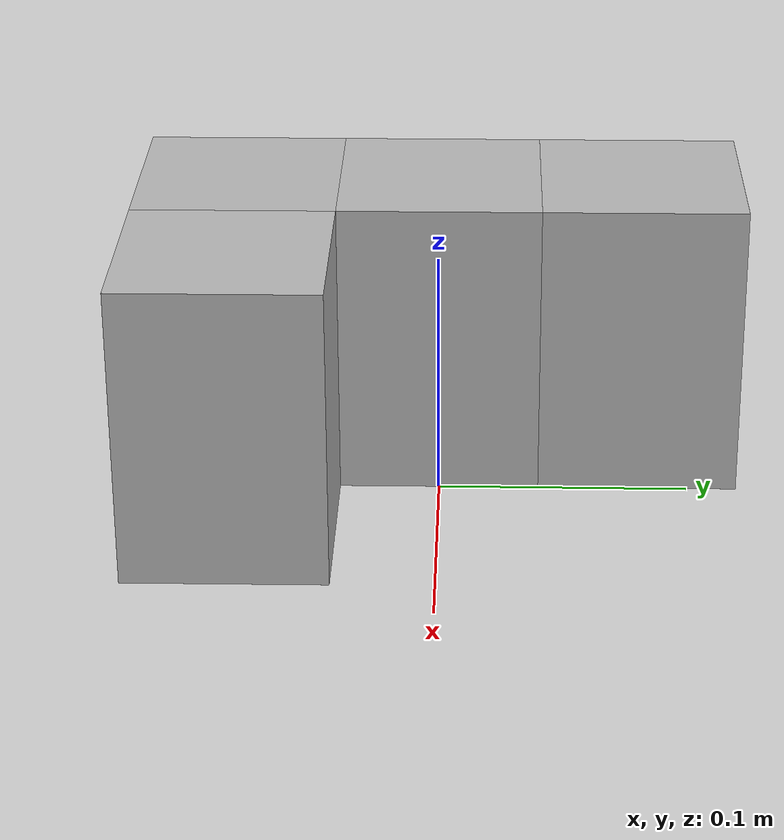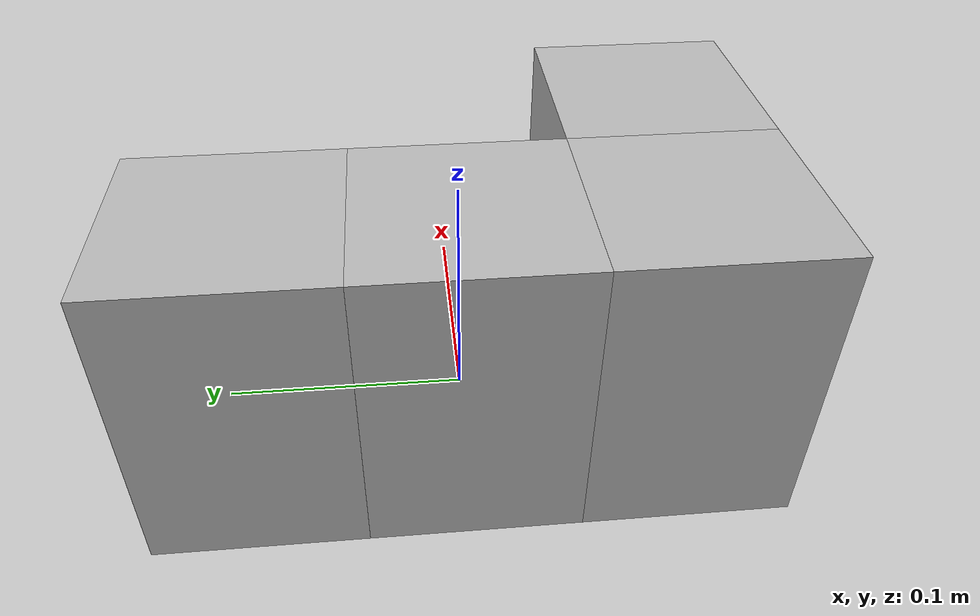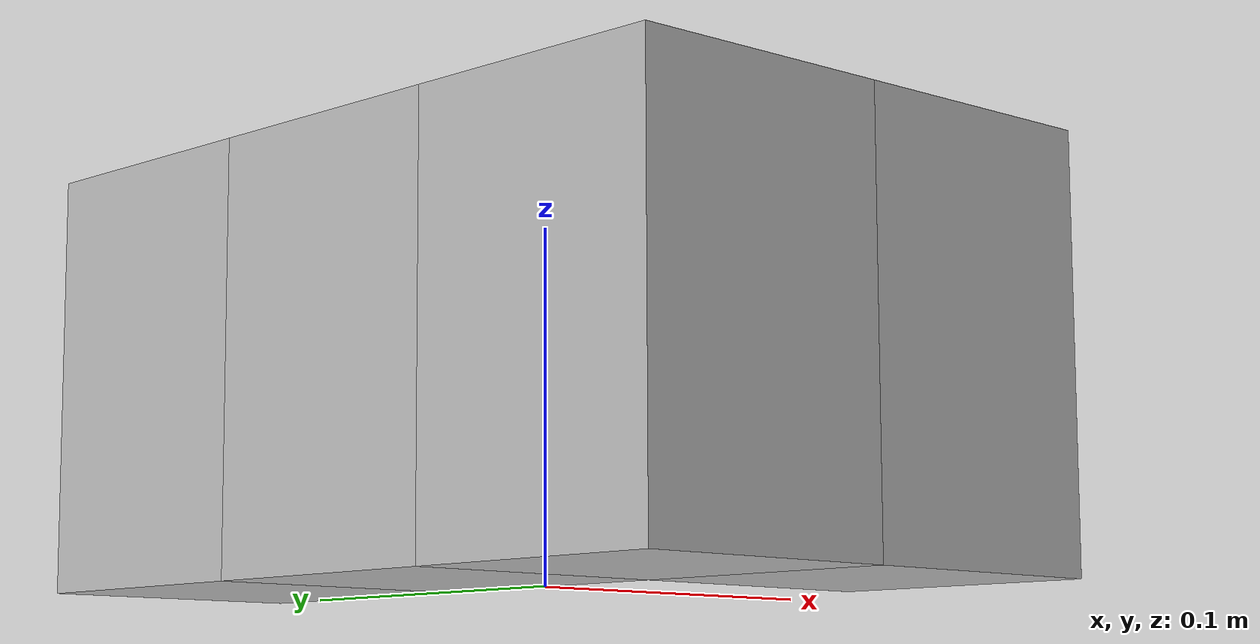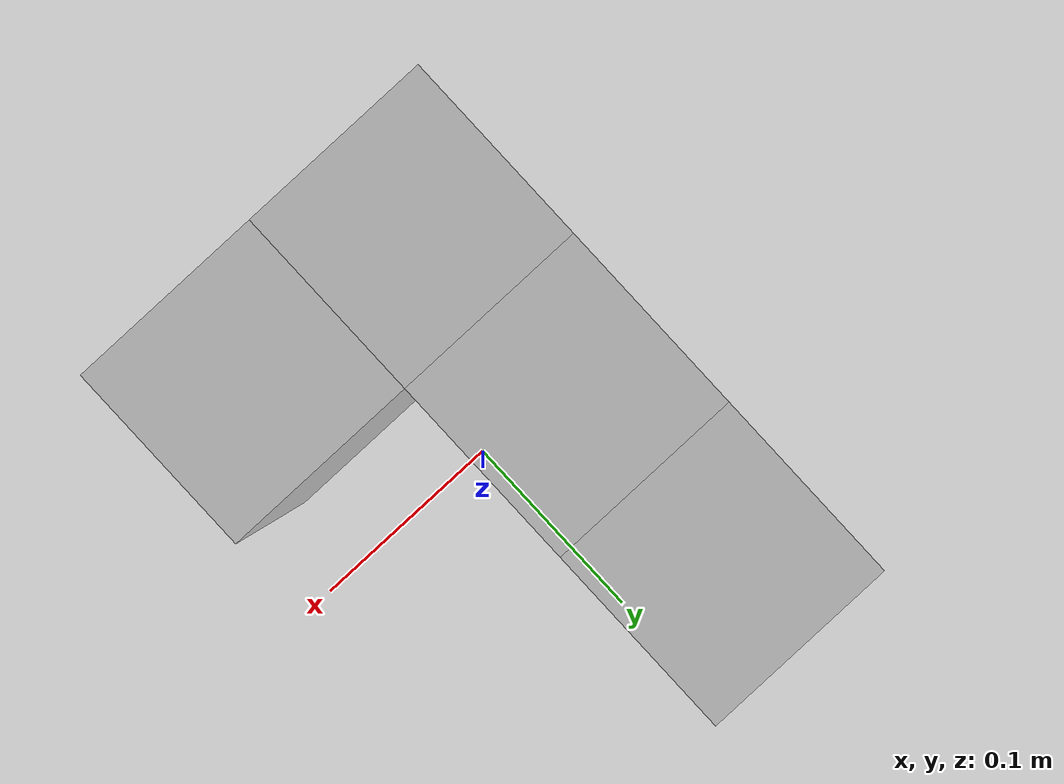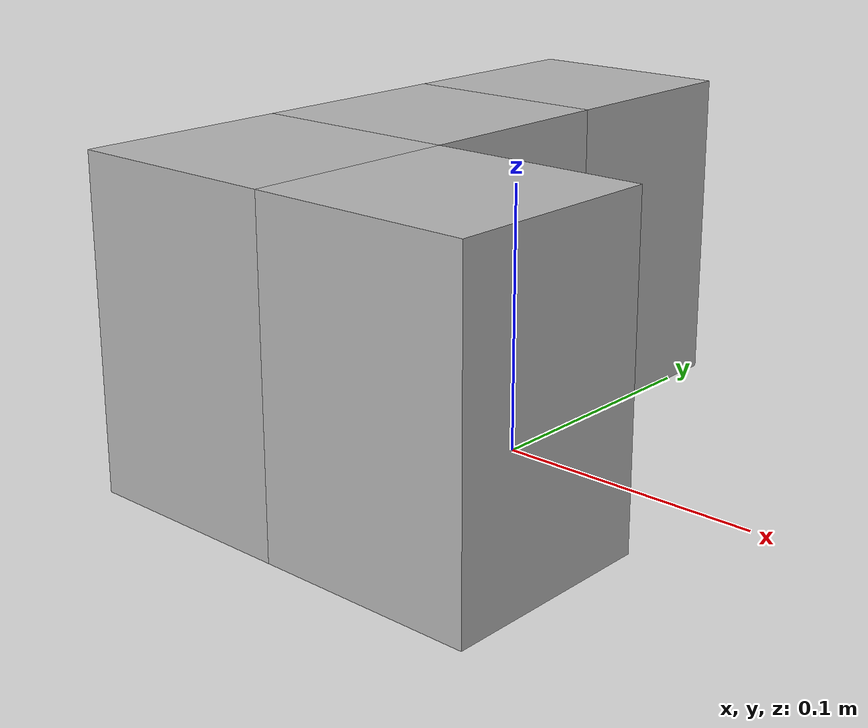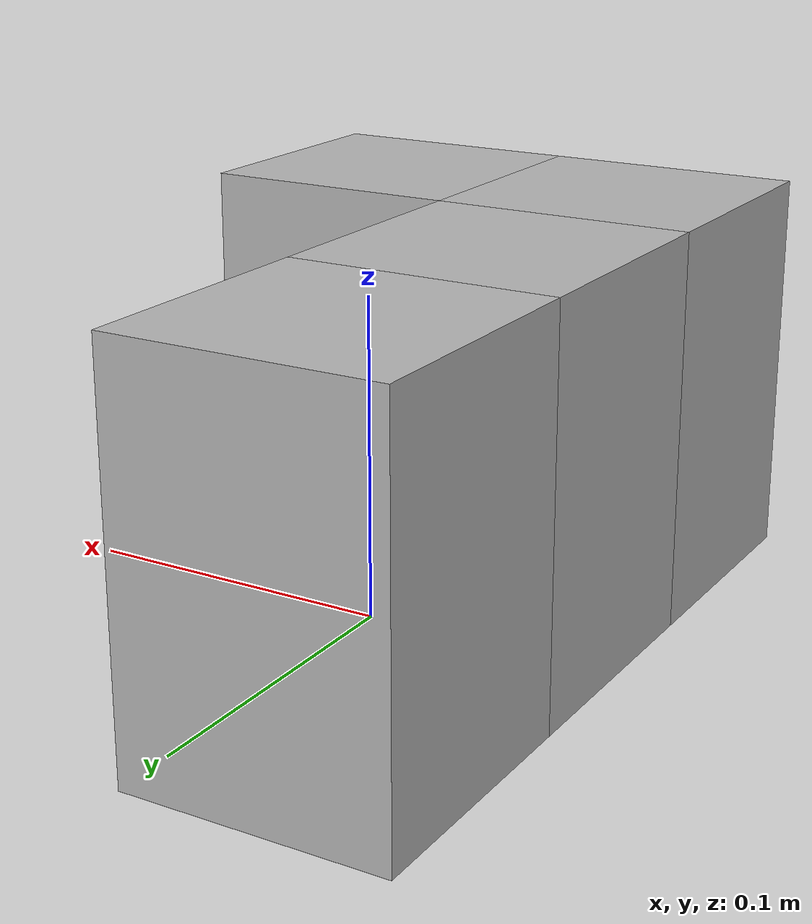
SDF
<?xml version="1.0"?>
<!--
  Planta (vista superior) — cada celda = 8x8 cm
    X .
    X .
    X X
-->
<sdf version="1.6">
  <model name="kalman_edificio_A">
    <static>true</static>
    <link name="link">

      <!-- caja 0: superior izquierda -->
      <collision name="col_0"><pose>-0.04  0.08 0.06 0 0 0</pose>
        <geometry><box><size>0.08 0.08 0.12</size></box></geometry>
      </collision>
      <visual name="vis_0"><pose>-0.04  0.08 0.06 0 0 0</pose>
        <geometry><box><size>0.08 0.08 0.12</size></box></geometry>
        <material><script>
          <uri>model://kalman_lab_box/materials/scripts</uri>
          <uri>model://kalman_lab_box/materials/textures</uri>
          <name>kalman_lab/Melamina</name>
        </script></material>
      </visual>

      <!-- caja 1: central izquierda -->
      <collision name="col_1"><pose>-0.04  0.00 0.06 0 0 0</pose>
        <geometry><box><size>0.08 0.08 0.12</size></box></geometry>
      </collision>
      <visual name="vis_1"><pose>-0.04  0.00 0.06 0 0 0</pose>
        <geometry><box><size>0.08 0.08 0.12</size></box></geometry>
        <material><script>
          <uri>model://kalman_lab_box/materials/scripts</uri>
          <uri>model://kalman_lab_box/materials/textures</uri>
          <name>kalman_lab/Melamina</name>
        </script></material>
      </visual>

      <!-- caja 2: inferior izquierda -->
      <collision name="col_2"><pose>-0.04 -0.08 0.06 0 0 0</pose>
        <geometry><box><size>0.08 0.08 0.12</size></box></geometry>
      </collision>
      <visual name="vis_2"><pose>-0.04 -0.08 0.06 0 0 0</pose>
        <geometry><box><size>0.08 0.08 0.12</size></box></geometry>
        <material><script>
          <uri>model://kalman_lab_box/materials/scripts</uri>
          <uri>model://kalman_lab_box/materials/textures</uri>
          <name>kalman_lab/Melamina</name>
        </script></material>
      </visual>

      <!-- caja 3: inferior derecha -->
      <collision name="col_3"><pose> 0.04 -0.08 0.06 0 0 0</pose>
        <geometry><box><size>0.08 0.08 0.12</size></box></geometry>
      </collision>
      <visual name="vis_3"><pose> 0.04 -0.08 0.06 0 0 0</pose>
        <geometry><box><size>0.08 0.08 0.12</size></box></geometry>
        <material><script>
          <uri>model://kalman_lab_box/materials/scripts</uri>
          <uri>model://kalman_lab_box/materials/textures</uri>
          <name>kalman_lab/Melamina</name>
        </script></material>
      </visual>

    </link>
  </model>
</sdf>
